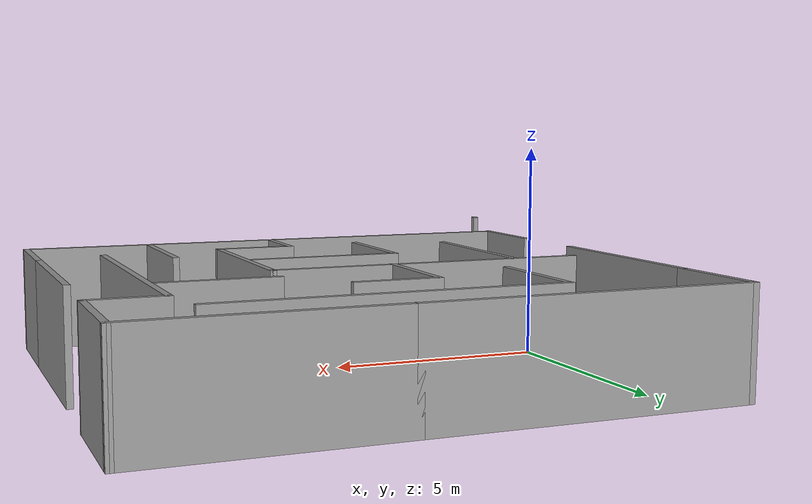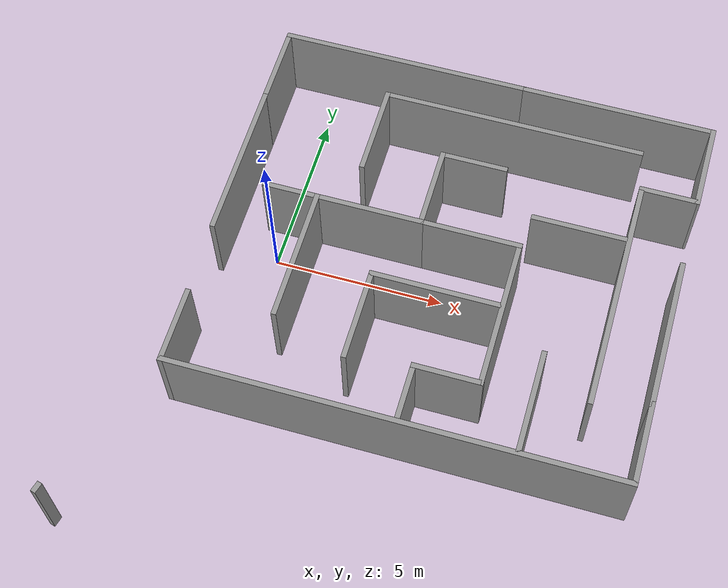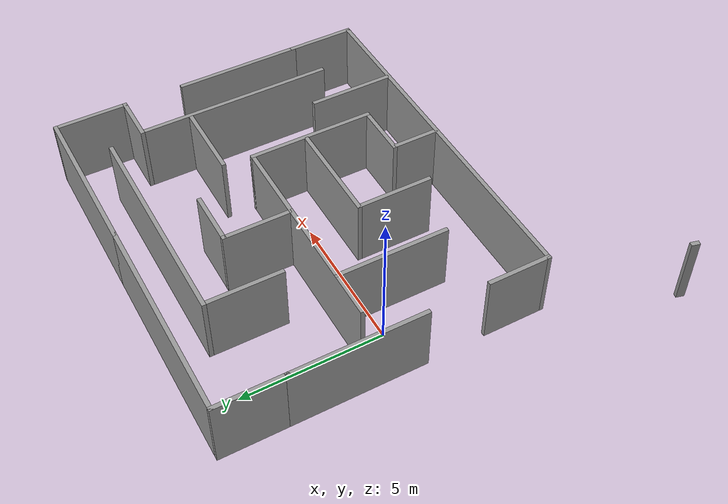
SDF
<?xml version='1.0'?>
<sdf version='1.7'>
  <model name='maze'>
    <pose>4.08596 -1.47619 0 0 -0 0</pose>
    <link name='Wall_10'>
      <collision name='Wall_10_Collision'>
        <geometry>
          <box>
            <size>7.5 0.15 2.5</size>
          </box>
        </geometry>
        <pose>0 0 1.25 0 -0 0</pose>
      </collision>
      <visual name='Wall_10_Visual'>
        <pose>0 0 1.25 0 -0 0</pose>
        <geometry>
          <box>
            <size>7.5 0.15 2.5</size>
          </box>
        </geometry>
        <material>
          <script>
            <uri>file://media/materials/scripts/gazebo.material</uri>
            <name>Gazebo/Grey</name>
          </script>
          <ambient>1 1 1 1</ambient>
        </material>
        <meta>
          <layer>0</layer>
        </meta>
      </visual>
      <pose>-1.93649 7.81421 0 0 -0 0</pose>
    </link>
    <link name='Wall_11'>
      <collision name='Wall_11_Collision'>
        <geometry>
          <box>
            <size>5.75 0.15 2.5</size>
          </box>
        </geometry>
        <pose>0 0 1.25 0 -0 0</pose>
      </collision>
      <visual name='Wall_11_Visual'>
        <pose>0 0 1.25 0 -0 0</pose>
        <geometry>
          <box>
            <size>5.75 0.15 2.5</size>
          </box>
        </geometry>
        <material>
          <script>
            <uri>file://media/materials/scripts/gazebo.material</uri>
            <name>Gazebo/Grey</name>
          </script>
          <ambient>1 1 1 1</ambient>
        </material>
        <meta>
          <layer>0</layer>
        </meta>
      </visual>
      <pose>4.53851 7.81421 0 0 -0 0</pose>
    </link>
    <link name='Wall_16'>
      <collision name='Wall_16_Collision'>
        <geometry>
          <box>
            <size>2.64173 0.15 2.5</size>
          </box>
        </geometry>
        <pose>0 0 1.25 0 -0 0</pose>
      </collision>
      <visual name='Wall_16_Visual'>
        <pose>0 0 1.25 0 -0 0</pose>
        <geometry>
          <box>
            <size>2.64173 0.15 2.5</size>
          </box>
        </geometry>
        <material>
          <script>
            <uri>file://media/materials/scripts/gazebo.material</uri>
            <name>Gazebo/Grey</name>
          </script>
          <ambient>1 1 1 1</ambient>
        </material>
        <meta>
          <layer>0</layer>
        </meta>
      </visual>
      <pose>7.33105 6.56837 0 0 -0 1.56481</pose>
    </link>
    <link name='Wall_19'>
      <collision name='Wall_19_Collision'>
        <geometry>
          <box>
            <size>4.5 0.15 2.5</size>
          </box>
        </geometry>
        <pose>0 0 1.25 0 -0 0</pose>
      </collision>
      <visual name='Wall_19_Visual'>
        <pose>0 0 1.25 0 -0 0</pose>
        <geometry>
          <box>
            <size>4.5 0.15 2.5</size>
          </box>
        </geometry>
        <material>
          <script>
            <uri>file://media/materials/scripts/gazebo.material</uri>
            <name>Gazebo/Grey</name>
          </script>
          <ambient>1 1 1 1</ambient>
        </material>
        <meta>
          <layer>0</layer>
        </meta>
      </visual>
      <pose>7.28842 1.00203 0 0 -0 -1.5708</pose>
    </link>
    <link name='Wall_20'>
      <collision name='Wall_20_Collision'>
        <geometry>
          <box>
            <size>2.44753 0.15 2.5</size>
          </box>
        </geometry>
        <pose>0 0 1.25 0 -0 0</pose>
      </collision>
      <visual name='Wall_20_Visual'>
        <pose>0 0 1.25 0 -0 0</pose>
        <geometry>
          <box>
            <size>2.44753 0.15 2.5</size>
          </box>
        </geometry>
        <material>
          <script>
            <uri>file://media/materials/scripts/gazebo.material</uri>
            <name>Gazebo/Grey</name>
          </script>
          <ambient>1 1 1 1</ambient>
        </material>
        <meta>
          <layer>0</layer>
        </meta>
      </visual>
      <pose>7.28842 -2.30425 0 0 -0 -1.5708</pose>
    </link>
    <link name='Wall_21'>
      <collision name='Wall_21_Collision'>
        <geometry>
          <box>
            <size>13 0.15 2.5</size>
          </box>
        </geometry>
        <pose>0 0 1.25 0 -0 0</pose>
      </collision>
      <visual name='Wall_21_Visual'>
        <pose>0 0 1.25 0 -0 0</pose>
        <geometry>
          <box>
            <size>13 0.15 2.5</size>
          </box>
        </geometry>
        <material>
          <script>
            <uri>file://media/materials/scripts/gazebo.material</uri>
            <name>Gazebo/Grey</name>
          </script>
          <ambient>1 1 1 1</ambient>
        </material>
        <meta>
          <layer>0</layer>
        </meta>
      </visual>
      <pose>0.86342 -3.45301 0 0 -0 3.14159</pose>
    </link>
    <link name='Wall_22'>
      <collision name='Wall_22_Collision'>
        <geometry>
          <box>
            <size>2.25 0.15 2.5</size>
          </box>
        </geometry>
        <pose>0 0 1.25 0 -0 0</pose>
      </collision>
      <visual name='Wall_22_Visual'>
        <pose>0 0 1.25 0 -0 0</pose>
        <geometry>
          <box>
            <size>2.25 0.15 2.5</size>
          </box>
        </geometry>
        <material>
          <script>
            <uri>file://media/materials/scripts/gazebo.material</uri>
            <name>Gazebo/Grey</name>
          </script>
          <ambient>1 1 1 1</ambient>
        </material>
        <meta>
          <layer>0</layer>
        </meta>
      </visual>
      <pose>-5.56158 -2.40301 0 0 -0 1.5708</pose>
    </link>
    <link name='Wall_24'>
      <collision name='Wall_24_Collision'>
        <geometry>
          <box>
            <size>4.75 0.15 2.5</size>
          </box>
        </geometry>
        <pose>0 0 1.25 0 -0 0</pose>
      </collision>
      <visual name='Wall_24_Visual'>
        <pose>0 0 1.25 0 -0 0</pose>
        <geometry>
          <box>
            <size>4.75 0.15 2.5</size>
          </box>
        </geometry>
        <material>
          <script>
            <uri>file://media/materials/scripts/gazebo.material</uri>
            <name>Gazebo/Grey</name>
          </script>
          <ambient>1 1 1 1</ambient>
        </material>
        <meta>
          <layer>0</layer>
        </meta>
      </visual>
      <pose>-2.32622 2.55062 0 0 -0 3.14159</pose>
    </link>
    <link name='Wall_26'>
      <collision name='Wall_26_Collision'>
        <geometry>
          <box>
            <size>2.5 0.15 2.5</size>
          </box>
        </geometry>
        <pose>0 0 1.25 0 -0 0</pose>
      </collision>
      <visual name='Wall_26_Visual'>
        <pose>0 0 1.25 0 -0 0</pose>
        <geometry>
          <box>
            <size>2.5 0.15 2.5</size>
          </box>
        </geometry>
        <material>
          <script>
            <uri>file://media/materials/scripts/gazebo.material</uri>
            <name>Gazebo/Grey</name>
          </script>
          <ambient>1 1 1 1</ambient>
        </material>
        <meta>
          <layer>0</layer>
        </meta>
      </visual>
      <pose>-0.026217 3.72562 0 0 -0 1.5708</pose>
    </link>
    <link name='Wall_27'>
      <collision name='Wall_27_Collision'>
        <geometry>
          <box>
            <size>2 0.15 2.5</size>
          </box>
        </geometry>
        <pose>0 0 1.25 0 -0 0</pose>
      </collision>
      <visual name='Wall_27_Visual'>
        <pose>0 0 1.25 0 -0 0</pose>
        <geometry>
          <box>
            <size>2 0.15 2.5</size>
          </box>
        </geometry>
        <material>
          <script>
            <uri>file://media/materials/scripts/gazebo.material</uri>
            <name>Gazebo/Grey</name>
          </script>
          <ambient>1 1 1 1</ambient>
        </material>
        <meta>
          <layer>0</layer>
        </meta>
      </visual>
      <pose>0.898783 4.90062 0 0 -0 0</pose>
    </link>
    <link name='Wall_29'>
      <collision name='Wall_29_Collision'>
        <geometry>
          <box>
            <size>3 0.15 2.5</size>
          </box>
        </geometry>
        <pose>0 0 1.25 0 -0 0</pose>
      </collision>
      <visual name='Wall_29_Visual'>
        <pose>0 0 1.25 0 -0 0</pose>
        <geometry>
          <box>
            <size>3 0.15 2.5</size>
          </box>
        </geometry>
        <material>
          <script>
            <uri>file://media/materials/scripts/gazebo.material</uri>
            <name>Gazebo/Grey</name>
          </script>
          <ambient>1 1 1 1</ambient>
        </material>
        <meta>
          <layer>0</layer>
        </meta>
      </visual>
      <pose>1.39878 2.55062 0 0 -0 0</pose>
    </link>
    <link name='Wall_30'>
      <collision name='Wall_30_Collision'>
        <geometry>
          <box>
            <size>4.5 0.15 2.5</size>
          </box>
        </geometry>
        <pose>0 0 1.25 0 -0 0</pose>
      </collision>
      <visual name='Wall_30_Visual'>
        <pose>0 0 1.25 0 -0 0</pose>
        <geometry>
          <box>
            <size>4.5 0.15 2.5</size>
          </box>
        </geometry>
        <material>
          <script>
            <uri>file://media/materials/scripts/gazebo.material</uri>
            <name>Gazebo/Grey</name>
          </script>
          <ambient>1 1 1 1</ambient>
        </material>
        <meta>
          <layer>0</layer>
        </meta>
      </visual>
      <pose>2.82378 0.37562 0 0 -0 -1.5708</pose>
    </link>
    <link name='Wall_31'>
      <collision name='Wall_31_Collision'>
        <geometry>
          <box>
            <size>2 0.15 2.5</size>
          </box>
        </geometry>
        <pose>0 0 1.25 0 -0 0</pose>
      </collision>
      <visual name='Wall_31_Visual'>
        <pose>0 0 1.25 0 -0 0</pose>
        <geometry>
          <box>
            <size>2 0.15 2.5</size>
          </box>
        </geometry>
        <material>
          <script>
            <uri>file://media/materials/scripts/gazebo.material</uri>
            <name>Gazebo/Grey</name>
          </script>
          <ambient>1 1 1 1</ambient>
        </material>
        <meta>
          <layer>0</layer>
        </meta>
      </visual>
      <pose>1.89878 -1.79938 0 0 -0 3.14159</pose>
    </link>
    <link name='Wall_32'>
      <collision name='Wall_32_Collision'>
        <geometry>
          <box>
            <size>1.75 0.15 2.5</size>
          </box>
        </geometry>
        <pose>0 0 1.25 0 -0 0</pose>
      </collision>
      <visual name='Wall_32_Visual'>
        <pose>0 0 1.25 0 -0 0</pose>
        <geometry>
          <box>
            <size>1.75 0.15 2.5</size>
          </box>
        </geometry>
        <material>
          <script>
            <uri>file://media/materials/scripts/gazebo.material</uri>
            <name>Gazebo/Grey</name>
          </script>
          <ambient>1 1 1 1</ambient>
        </material>
        <meta>
          <layer>0</layer>
        </meta>
      </visual>
      <pose>0.973783 -2.59938 0 0 -0 -1.5708</pose>
    </link>
    <link name='Wall_34'>
      <collision name='Wall_34_Collision'>
        <geometry>
          <box>
            <size>1.75 0.15 2.5</size>
          </box>
        </geometry>
        <pose>0 0 1.25 0 -0 0</pose>
      </collision>
      <visual name='Wall_34_Visual'>
        <pose>0 0 1.25 0 -0 0</pose>
        <geometry>
          <box>
            <size>1.75 0.15 2.5</size>
          </box>
        </geometry>
        <material>
          <script>
            <uri>file://media/materials/scripts/gazebo.material</uri>
            <name>Gazebo/Grey</name>
          </script>
          <ambient>1 1 1 1</ambient>
        </material>
        <meta>
          <layer>0</layer>
        </meta>
      </visual>
      <pose>6.5236 5.32253 0 0 -0 3.14159</pose>
    </link>
    <link name='Wall_35'>
      <collision name='Wall_35_Collision'>
        <geometry>
          <box>
            <size>7 0.15 2.5</size>
          </box>
        </geometry>
        <pose>0 0 1.25 0 -0 0</pose>
      </collision>
      <visual name='Wall_35_Visual'>
        <pose>0 0 1.25 0 -0 0</pose>
        <geometry>
          <box>
            <size>7 0.15 2.5</size>
          </box>
        </geometry>
        <material>
          <script>
            <uri>file://media/materials/scripts/gazebo.material</uri>
            <name>Gazebo/Grey</name>
          </script>
          <ambient>1 1 1 1</ambient>
        </material>
        <meta>
          <layer>0</layer>
        </meta>
      </visual>
      <pose>5.7236 1.89753 0 0 -0 -1.5708</pose>
    </link>
    <link name='Wall_37'>
      <collision name='Wall_37_Collision'>
        <geometry>
          <box>
            <size>7.75 0.15 2.5</size>
          </box>
        </geometry>
        <pose>0 0 1.25 0 -0 0</pose>
      </collision>
      <visual name='Wall_37_Visual'>
        <pose>0 0 1.25 0 -0 0</pose>
        <geometry>
          <box>
            <size>7.75 0.15 2.5</size>
          </box>
        </geometry>
        <material>
          <script>
            <uri>file://media/materials/scripts/gazebo.material</uri>
            <name>Gazebo/Grey</name>
          </script>
          <ambient>1 1 1 1</ambient>
        </material>
        <meta>
          <layer>0</layer>
        </meta>
      </visual>
      <pose>1.65342 6.51405 0 0 -0 3.14159</pose>
    </link>
    <link name='Wall_38'>
      <collision name='Wall_38_Collision'>
        <geometry>
          <box>
            <size>2.75 0.15 2.5</size>
          </box>
        </geometry>
        <pose>0 0 1.25 0 -0 0</pose>
      </collision>
      <visual name='Wall_38_Visual'>
        <pose>0 0 1.25 0 -0 0</pose>
        <geometry>
          <box>
            <size>2.75 0.15 2.5</size>
          </box>
        </geometry>
        <material>
          <script>
            <uri>file://media/materials/scripts/gazebo.material</uri>
            <name>Gazebo/Grey</name>
          </script>
          <ambient>1 1 1 1</ambient>
        </material>
        <meta>
          <layer>0</layer>
        </meta>
      </visual>
      <pose>-2.14658 5.21405 0 0 -0 -1.5708</pose>
    </link>
    <link name='Wall_40'>
      <collision name='Wall_40_Collision'>
        <geometry>
          <box>
            <size>3 0.15 2.5</size>
          </box>
        </geometry>
        <pose>0 0 1.25 0 -0 0</pose>
      </collision>
      <visual name='Wall_40_Visual'>
        <pose>0 0 1.25 0 -0 0</pose>
        <geometry>
          <box>
            <size>3 0.15 2.5</size>
          </box>
        </geometry>
        <material>
          <script>
            <uri>file://media/materials/scripts/gazebo.material</uri>
            <name>Gazebo/Grey</name>
          </script>
          <ambient>1 1 1 1</ambient>
        </material>
        <meta>
          <layer>0</layer>
        </meta>
      </visual>
      <pose>4.22982 -1.9334 0 0 -0 -1.5708</pose>
    </link>
    <link name='Wall_42'>
      <collision name='Wall_42_Collision'>
        <geometry>
          <box>
            <size>2.75 0.15 2.5</size>
          </box>
        </geometry>
        <pose>0 0 1.25 0 -0 0</pose>
      </collision>
      <visual name='Wall_42_Visual'>
        <pose>0 0 1.25 0 -0 0</pose>
        <geometry>
          <box>
            <size>2.75 0.15 2.5</size>
          </box>
        </geometry>
        <material>
          <script>
            <uri>file://media/materials/scripts/gazebo.material</uri>
            <name>Gazebo/Grey</name>
          </script>
          <ambient>1 1 1 1</ambient>
        </material>
        <meta>
          <layer>0</layer>
        </meta>
      </visual>
      <pose>4.28643 3.56143 0 0 -0 3.14159</pose>
    </link>
    <link name='Wall_44'>
      <collision name='Wall_44_Collision'>
        <geometry>
          <box>
            <size>4 0.15 2.5</size>
          </box>
        </geometry>
        <pose>0 0 1.25 0 -0 0</pose>
      </collision>
      <visual name='Wall_44_Visual'>
        <pose>0 0 1.25 0 -0 0</pose>
        <geometry>
          <box>
            <size>4 0.15 2.5</size>
          </box>
        </geometry>
        <material>
          <script>
            <uri>file://media/materials/scripts/gazebo.material</uri>
            <name>Gazebo/Grey</name>
          </script>
          <ambient>1 1 1 1</ambient>
        </material>
        <meta>
          <layer>0</layer>
        </meta>
      </visual>
      <pose>-3.08524 0.62562 0 0 -0 -1.5708</pose>
    </link>
    <link name='Wall_46'>
      <collision name='Wall_46_Collision'>
        <geometry>
          <box>
            <size>3.75 0.15 2.5</size>
          </box>
        </geometry>
        <pose>0 0 1.25 0 -0 0</pose>
      </collision>
      <visual name='Wall_46_Visual'>
        <pose>0 0 1.25 0 -0 0</pose>
        <geometry>
          <box>
            <size>3.75 0.15 2.5</size>
          </box>
        </geometry>
        <material>
          <script>
            <uri>file://media/materials/scripts/gazebo.material</uri>
            <name>Gazebo/Grey</name>
          </script>
          <ambient>1 1 1 1</ambient>
        </material>
        <meta>
          <layer>0</layer>
        </meta>
      </visual>
      <pose>0.913604 0.582205 0 0 -0 3.14159</pose>
    </link>
    <link name='Wall_47'>
      <collision name='Wall_47_Collision'>
        <geometry>
          <box>
            <size>2.75 0.15 2.5</size>
          </box>
        </geometry>
        <pose>0 0 1.25 0 -0 0</pose>
      </collision>
      <visual name='Wall_47_Visual'>
        <pose>0 0 1.25 0 -0 0</pose>
        <geometry>
          <box>
            <size>2.75 0.15 2.5</size>
          </box>
        </geometry>
        <material>
          <script>
            <uri>file://media/materials/scripts/gazebo.material</uri>
            <name>Gazebo/Grey</name>
          </script>
          <ambient>1 1 1 1</ambient>
        </material>
        <meta>
          <layer>0</layer>
        </meta>
      </visual>
      <pose>-0.886396 -0.717794 0 0 -0 -1.5708</pose>
    </link>
    <link name='Wall_5'>
      <collision name='Wall_5_Collision'>
        <geometry>
          <box>
            <size>0.3 0.15 2.5</size>
          </box>
        </geometry>
        <pose>0 0 1.25 0 -0 0</pose>
      </collision>
      <visual name='Wall_5_Visual'>
        <pose>0 0 1.25 0 -0 0</pose>
        <geometry>
          <box>
            <size>0.3 0.15 2.5</size>
          </box>
        </geometry>
        <material>
          <script>
            <uri>file://media/materials/scripts/gazebo.material</uri>
            <name>Gazebo/Grey</name>
          </script>
          <ambient>1 1 1 1</ambient>
        </material>
        <meta>
          <layer>0</layer>
        </meta>
      </visual>
      <pose>-7.30269 -7.72536 0 0 -0 1.309</pose>
    </link>
    <link name='Wall_8'>
      <collision name='Wall_8_Collision'>
        <geometry>
          <box>
            <size>4.75 0.15 2.5</size>
          </box>
        </geometry>
        <pose>0 0 1.25 0 -0 0</pose>
      </collision>
      <visual name='Wall_8_Visual'>
        <pose>0 0 1.25 0 -0 0</pose>
        <geometry>
          <box>
            <size>4.75 0.15 2.5</size>
          </box>
        </geometry>
        <material>
          <script>
            <uri>file://media/materials/scripts/gazebo.material</uri>
            <name>Gazebo/Grey</name>
          </script>
          <ambient>1 1 1 1</ambient>
        </material>
        <meta>
          <layer>0</layer>
        </meta>
      </visual>
      <pose>-5.61149 3.16421 0 0 -0 1.5708</pose>
    </link>
    <link name='Wall_9'>
      <collision name='Wall_9_Collision'>
        <geometry>
          <box>
            <size>2.5 0.15 2.5</size>
          </box>
        </geometry>
        <pose>0 0 1.25 0 -0 0</pose>
      </collision>
      <visual name='Wall_9_Visual'>
        <pose>0 0 1.25 0 -0 0</pose>
        <geometry>
          <box>
            <size>2.5 0.15 2.5</size>
          </box>
        </geometry>
        <material>
          <script>
            <uri>file://media/materials/scripts/gazebo.material</uri>
            <name>Gazebo/Grey</name>
          </script>
          <ambient>1 1 1 1</ambient>
        </material>
        <meta>
          <layer>0</layer>
        </meta>
      </visual>
      <pose>-5.61149 6.63922 0 0 -0 1.5708</pose>
    </link>
    <static>1</static>
  </model>
</sdf>
